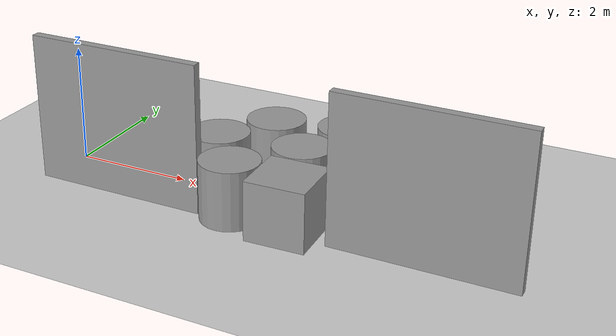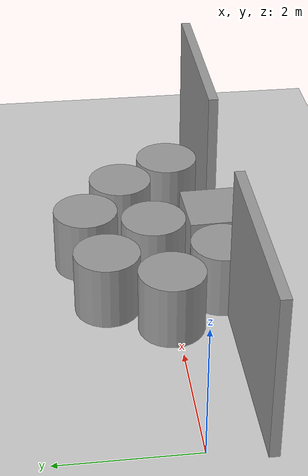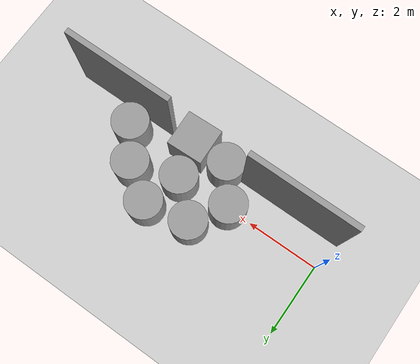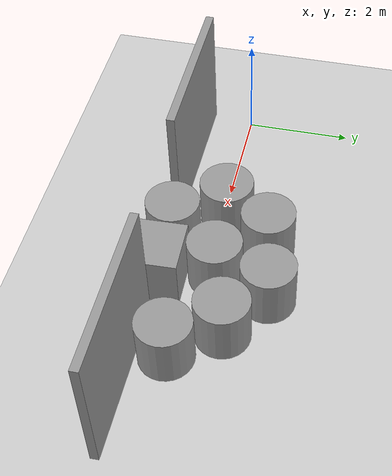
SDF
<sdf version="1.6">
 <world name="default">
  <light name="sun" type="directional">
   <pose>0 0 10 0 -0 0</pose>
   <diffuse>0.8 0.8 0.8 1</diffuse>
   <specular>0.2 0.2 0.2 1</specular>
   <attenuation>
    <range>1000</range>
    <constant>0.9</constant>
    <linear>0.01</linear>
    <quadratic>0.001</quadratic>
   </attenuation>
   <direction>-0.5 0.1 -0.9</direction>
  </light>
  <model name="ground_plane">
   <static>1</static>
   <link name="link">
    <collision name="collision">
     <geometry><plane><normal>0 0 1</normal><size>100 100</size></plane></geometry>
     <surface><friction><ode><mu>100</mu><mu2>50</mu2></ode></friction></surface>
    </collision>
    <visual name="visual">
     <cast_shadows>0</cast_shadows>
     <geometry><plane><normal>0 0 1</normal><size>100 100</size></plane></geometry>
     <material>
      <script><uri>file://media/materials/scripts/gazebo.material</uri><name>Gazebo/Grey</name></script>
     </material>
    </visual>
   </link>
  </model>
  <gravity>0 0 -9.8</gravity>
  <magnetic_field>6e-06 2.3e-05 -4.2e-05</magnetic_field>
  <atmosphere type="adiabatic"/>
  <physics name="default_physics" default="0" type="ode">
   <max_step_size>0.001</max_step_size>
   <real_time_factor>1</real_time_factor>
   <real_time_update_rate>1000</real_time_update_rate>
  </physics>
  <scene><ambient>0.4 0.4 0.4 1</ambient><background>0.7 0.7 0.7 1</background><shadows>1</shadows></scene>
  <spherical_coordinates>
   <surface_model>EARTH_WGS84</surface_model>
   <latitude_deg>0</latitude_deg>
   <longitude_deg>0</longitude_deg>
   <elevation>0</elevation>
   <heading_deg>0</heading_deg>
  </spherical_coordinates>
  <model name="obstacleAvoidance">
   <pose>3.92526 -0.861638 0 0 -0 0</pose>
   <link name="Wall_4">
    <collision name="Wall_4_Collision">
     <geometry><box><size>3 0.15 2.5</size></box></geometry>
     <pose>0 0 1.25 0 -0 0</pose>
    </collision>
    <visual name="Wall_4_Visual">
     <pose>0 0 1.25 0 -0 0</pose>
     <geometry><box><size>3 0.15 2.5</size></box></geometry>
     <material>
      <script><uri>file://media/materials/scripts/gazebo.material</uri><name>Gazebo/Grey</name></script>
      <ambient>1 1 1 1</ambient>
     </material>
     <meta><layer>0</layer></meta>
    </visual>
    <pose>-2.6 0 0 0 -0 0</pose>
   </link>
   <link name="Wall_6">
    <collision name="Wall_6_Collision">
     <geometry><box><size>3 0.15 2.5</size></box></geometry>
     <pose>0 0 1.25 0 -0 0</pose>
    </collision>
    <visual name="Wall_6_Visual">
     <pose>0 0 1.25 0 -0 0</pose>
     <geometry><box><size>3 0.15 2.5</size></box></geometry>
     <material>
      <script><uri>file://media/materials/scripts/gazebo.material</uri><name>Gazebo/Grey</name></script>
      <ambient>1 1 1 1</ambient>
     </material>
     <meta><layer>0</layer></meta>
    </visual>
    <pose>2.6 0 0 0 -0 0</pose>
   </link>
   <static>1</static>
  </model>
  <model name="unit_box">
   <pose>4.34359 -0.839158 0.499995 0 -1e-05 0.03398</pose>
   <link name="link">
    <inertial>
     <mass>1</mass>
     <inertia>
      <ixx>0.166667</ixx>
      <ixy>0</ixy>
      <ixz>0</ixz>
      <iyy>0.166667</iyy>
      <iyz>0</iyz>
      <izz>0.166667</izz>
     </inertia>
    </inertial>
    <collision name="collision"><geometry><box><size>1 1 1</size></box></geometry></collision>
    <visual name="visual">
     <geometry><box><size>1 1 1</size></box></geometry>
     <material>
      <script><name>Gazebo/Grey</name><uri>file://media/materials/scripts/gazebo.material</uri></script>
     </material>
    </visual>
   </link>
  </model>
  <model name="unit_cylinder">
   <pose>3.32528 -0.781741 0.499997 1e-06 1e-06 0.003075</pose>
   <link name="link">
    <inertial>
     <mass>1</mass>
     <inertia><ixx>0.145833</ixx><ixy>0</ixy><ixz>0</ixz><iyy>0.145833</iyy><iyz>0</iyz><izz>0.125</izz></inertia>
    </inertial>
    <collision name="collision">
     <geometry><cylinder><radius>0.5</radius><length>1</length></cylinder></geometry>
    </collision>
    <visual name="visual">
     <geometry><cylinder><radius>0.5</radius><length>1</length></cylinder></geometry>
     <material>
      <script><name>Gazebo/Grey</name><uri>file://media/materials/scripts/gazebo.material</uri></script>
     </material>
    </visual>
   </link>
  </model>
  <model name="unit_cylinder_0">
   <pose>2.66785 0.083715 0.499997 4e-06 4e-06 -0</pose>
   <link name="link">
    <inertial>
     <mass>1</mass>
     <inertia><ixx>0.145833</ixx><ixy>0</ixy><ixz>0</ixz><iyy>0.145833</iyy><iyz>0</iyz><izz>0.125</izz></inertia>
    </inertial>
    <collision name="collision">
     <geometry><cylinder><radius>0.5</radius><length>1</length></cylinder></geometry>
    </collision>
    <visual name="visual">
     <geometry><cylinder><radius>0.5</radius><length>1</length></cylinder></geometry>
     <material>
      <script><name>Gazebo/Grey</name><uri>file://media/materials/scripts/gazebo.material</uri></script>
     </material>
    </visual>
   </link>
  </model>
  <model name="unit_cylinder_1">
   <pose>3.24979 0.976942 0.499994 -4e-06 -3e-06 -0</pose>
   <link name="link">
    <inertial>
     <mass>1</mass>
     <inertia><ixx>0.145833</ixx><ixy>0</ixy><ixz>0</ixz><iyy>0.145833</iyy><iyz>0</iyz><izz>0.125</izz></inertia>
    </inertial>
    <collision name="collision">
     <geometry><cylinder><radius>0.5</radius><length>1</length></cylinder></geometry>
    </collision>
    <visual name="visual">
     <geometry><cylinder><radius>0.5</radius><length>1</length></cylinder></geometry>
     <material>
      <script><name>Gazebo/Grey</name><uri>file://media/materials/scripts/gazebo.material</uri></script>
     </material>
    </visual>
   </link>
  </model>
  <model name="unit_cylinder_2">
   <pose>4.10343 0.182265 0.5 0 0 -0.010796</pose>
   <link name="link">
    <inertial>
     <mass>1</mass>
     <inertia><ixx>0.145833</ixx><ixy>0</ixy><ixz>0</ixz><iyy>0.145833</iyy><iyz>0</iyz><izz>0.125</izz></inertia>
    </inertial>
    <collision name="collision">
     <geometry><cylinder><radius>0.5</radius><length>1</length></cylinder></geometry>
    </collision>
    <visual name="visual">
     <geometry><cylinder><radius>0.5</radius><length>1</length></cylinder></geometry>
     <material>
      <script><name>Gazebo/Grey</name><uri>file://media/materials/scripts/gazebo.material</uri></script>
     </material>
    </visual>
   </link>
  </model>
  <model name="unit_cylinder_3">
   <pose>4.44008 1.20929 0.499992 -3e-06 3e-06 0</pose>
   <link name="link">
    <inertial>
     <mass>1</mass>
     <inertia><ixx>0.145833</ixx><ixy>0</ixy><ixz>0</ixz><iyy>0.145833</iyy><iyz>0</iyz><izz>0.125</izz></inertia>
    </inertial>
    <collision name="collision">
     <geometry><cylinder><radius>0.5</radius><length>1</length></cylinder></geometry>
    </collision>
    <visual name="visual">
     <geometry><cylinder><radius>0.5</radius><length>1</length></cylinder></geometry>
     <material>
      <script><name>Gazebo/Grey</name><uri>file://media/materials/scripts/gazebo.material</uri></script>
     </material>
    </visual>
   </link>
  </model>
  <model name="unit_cylinder_4">
   <pose>5.94085 -0.252503 0.499997 4e-06 3e-06 -0</pose>
   <link name="link">
    <inertial>
     <mass>1</mass>
     <inertia><ixx>0.145833</ixx><ixy>0</ixy><ixz>0</ixz><iyy>0.145833</iyy><iyz>0</iyz><izz>0.125</izz></inertia>
    </inertial>
    <collision name="collision">
     <geometry><cylinder><radius>0.5</radius><length>1</length></cylinder></geometry>
    </collision>
    <visual name="visual">
     <geometry><cylinder><radius>0.5</radius><length>1</length></cylinder></geometry>
     <material>
      <script><name>Gazebo/Grey</name><uri>file://media/materials/scripts/gazebo.material</uri></script>
     </material>
    </visual>
   </link>
  </model>
  <model name="unit_cylinder_5">
   <pose>5.31932 0.585709 0.499993 -3e-06 -4e-06 -0.008667</pose>
   <link name="link">
    <inertial>
     <mass>1</mass>
     <inertia><ixx>0.145833</ixx><ixy>0</ixy><ixz>0</ixz><iyy>0.145833</iyy><iyz>0</iyz><izz>0.125</izz></inertia>
    </inertial>
    <collision name="collision">
     <geometry><cylinder><radius>0.5</radius><length>1</length></cylinder></geometry>
    </collision>
    <visual name="visual">
     <geometry><cylinder><radius>0.5</radius><length>1</length></cylinder></geometry>
     <material>
      <script><name>Gazebo/Grey</name><uri>file://media/materials/scripts/gazebo.material</uri></script>
     </material>
    </visual>
   </link>
  </model>
 </world>
</sdf>
